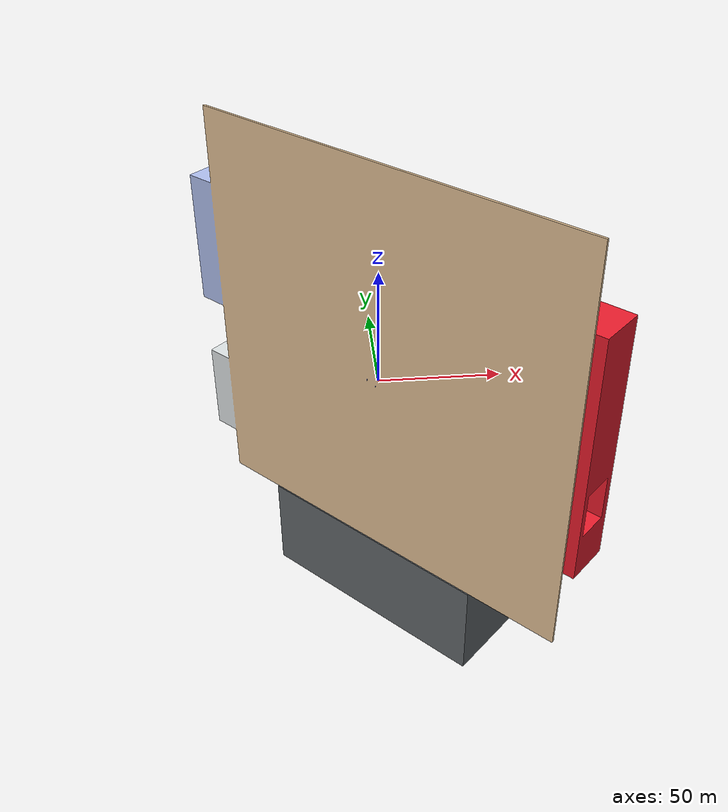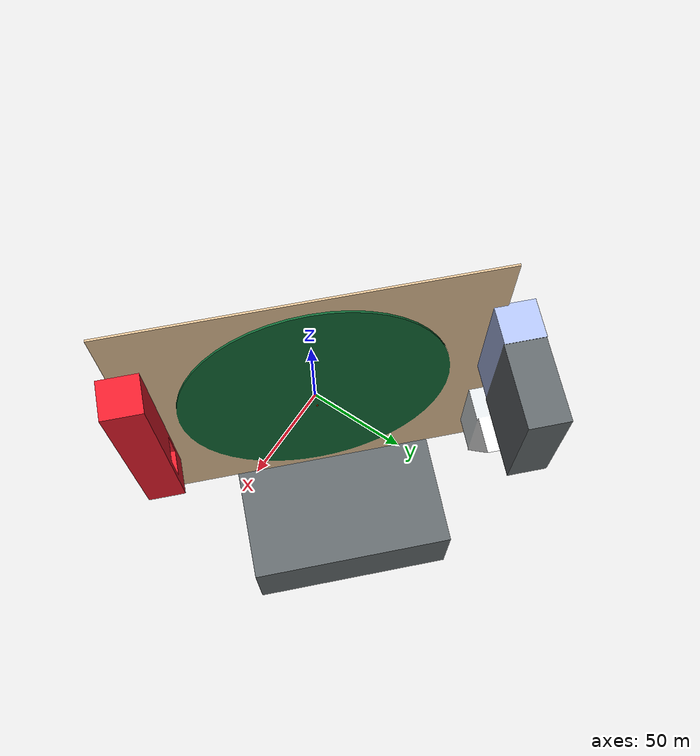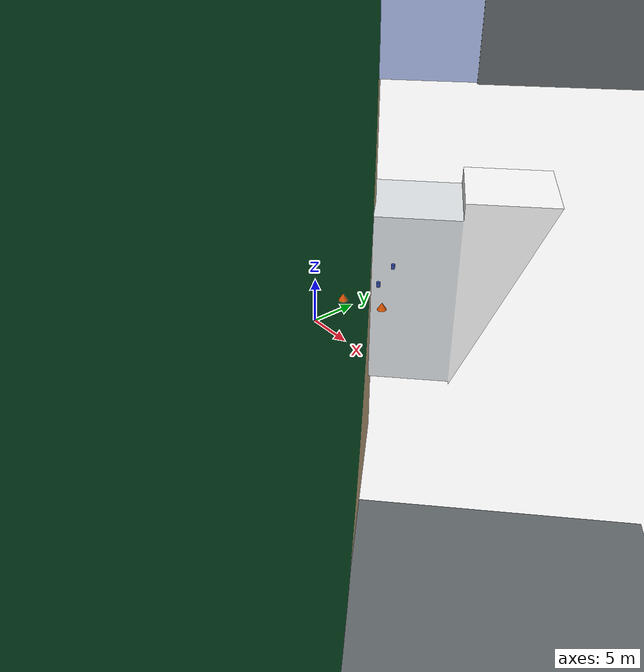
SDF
<?xml version="1.0" ?>
<sdf version="1.8">
    <world name="pioneer_world">
        <physics name="1ms" type="ignored">
            <max_step_size>0.001</max_step_size>
            <real_time_factor>1.0</real_time_factor>
        </physics>
        <plugin
            filename="libgz-sim-physics-system"
            name="gz::sim::systems::Physics">
        </plugin>
        <plugin
            filename="libgz-sim-user-commands-system"
            name="gz::sim::systems::UserCommands">
        </plugin>
        <plugin
            filename="libgz-sim-scene-broadcaster-system"
            name="gz::sim::systems::SceneBroadcaster">
        </plugin>
        <plugin filename="libgz-sim-imu-system"
                name="gz::sim::systems::Imu">
        </plugin>
        <plugin filename="libgz-sim-sensors-system"
                name="gz::sim::systems::Sensors">
        </plugin>
        <plugin filename="libgz-sim-contact-system"
                name="gz::sim::systems::Contact">
        </plugin>
        <!-- Navsat plugin -->
        <plugin
            filename="gz-sim-navsat-system"
            name="gz::sim::systems::NavSat">
        </plugin>

        <spherical_coordinates>
            <surface_model>EARTH_WGS84</surface_model>
            <world_frame_orientation>ENU</world_frame_orientation>
            <latitude_deg>-31.9080057</latitude_deg>
            <longitude_deg>115.817984</longitude_deg>
            <elevation>0</elevation>
            <heading_deg>0</heading_deg>
        </spherical_coordinates>

        <light type="directional" name="sun">
                <cast_shadows>true</cast_shadows>
                <pose>0 0 10 0 0 0</pose>
                <diffuse>0.8 0.8 0.8 1</diffuse>
                <specular>0.2 0.2 0.2 1</specular>
                <attenuation>
                    <range>1000</range>
                    <constant>0.9</constant>
                    <linear>0.01</linear>
                    <quadratic>0.001</quadratic>
                </attenuation>
                <direction>-0.5 0.1 -0.9</direction>
            </light>

            <model name="ground_plane">
                <static>true</static>
                <pose>0 0 0 -1.5708 0 -0.785</pose>
                <link name="link">
                    <collision name="collision">
                        <geometry>
                            <mesh>
                                <uri>/home/jeremy/Resources/install/pioneer/share/pioneer/src/meshes/james_oval.dae</uri>
                            </mesh>
                        </geometry>
                    </collision>
                    <visual name="visual">
                        <geometry>
                            <mesh>
                                <uri>/home/jeremy/Resources/install/pioneer/share/pioneer/src/meshes/james_oval.dae</uri>
                            </mesh>
                        </geometry>
                    </visual>
                </link>
            </model>

            <model name='cone'>
                <static>true</static>
                <pose>2 0 2.3 0 0 0</pose><!--pose relative to the world-->
                <link name='box'>
                    <pose/>
                    <inertial> <!--inertial properties of the link mass, inertia matix-->
                        <mass>1.14395</mass>
                        <inertia>
                            <ixx>9.532917</ixx>
                            <ixy>0</ixy>
                            <ixz>0</ixz>
                            <iyy>0.023832</iyy>
                            <iyz>0</iyz>
                            <izz>9.556749</izz>
                        </inertia>
                    </inertial>
                    <visual name='visual'>
                        <geometry>
                            <cone>
                                <radius>0.5</radius>
                                <length>0.8</length>
                            </cone>
                        </geometry>
                        <!--let's add color to our link-->
                        <material>
                            <ambient>0.8 0.3 0.0 1</ambient>
                            <diffuse>0.8 0.3 0.0 1</diffuse>
                            <specular>0.8 0.3 0.0 1</specular>
                        </material>
                    </visual>
                    <collision name='collision'> <!--todo: describe why we need the collision-->
                        <geometry>
                            <cone>
                                <radius>0.5</radius>
                                <length>0.8</length>
                            </cone>
                        </geometry>
                    </collision>
                    <sensor name='sensor_contact' type='contact'>
                        <contact>
                            <collision>collision</collision>
                        </contact>
                    </sensor>
                </link>
                <plugin filename="libgz-sim-touchplugin-system"
                        name="gz::sim::systems::TouchPlugin">
                    <target>vehicle_blue</target>
                    <namespace>cone</namespace>
                    <time>0.001</time>
                    <enabled>true</enabled>
                </plugin>
            </model>

            <model name='cone2'>
                <static>true</static>
                <pose>1 0 2.3 0 0 0</pose><!--pose relative to the world-->
                <link name='box'>
                    <pose/>
                    <inertial> <!--inertial properties of the link mass, inertia matix-->
                        <mass>1.14395</mass>
                        <inertia>
                            <ixx>9.532917</ixx>
                            <ixy>0</ixy>
                            <ixz>0</ixz>
                            <iyy>0.023832</iyy>
                            <iyz>0</iyz>
                            <izz>9.556749</izz>
                        </inertia>
                    </inertial>
                    <visual name='visual'>
                        <geometry>
                            <cone>
                                <radius>0.5</radius>
                                <length>0.8</length>
                            </cone>
                        </geometry>
                        <!--let's add color to our link-->
                        <material>
                            <ambient>0.8 0.3 0.0 1</ambient>
                            <diffuse>0.8 0.3 0.0 1</diffuse>
                            <specular>0.8 0.3 0.0 1</specular>
                        </material>
                    </visual>
                    <collision name='collision'> <!--todo: describe why we need the collision-->
                        <geometry>
                            <cone>
                                <radius>0.5</radius>
                                <length>0.8</length>
                            </cone>
                        </geometry>
                    </collision>
                    <sensor name='sensor_contact' type='contact'>
                        <contact>
                            <collision>collision</collision>
                        </contact>
                    </sensor>
                </link>
                <plugin filename="libgz-sim-touchplugin-system"
                        name="gz::sim::systems::TouchPlugin">
                    <target>vehicle_blue</target>
                    <namespace>cone</namespace>
                    <time>0.001</time>
                    <enabled>true</enabled>
                </plugin>
            </model>

            <model name='cone3'>
                <static>true</static>
                <pose>-1 2 2.3 0 0 0</pose><!--pose relative to the world-->
                <link name='box'>
                    <pose/>
                    <inertial> <!--inertial properties of the link mass, inertia matix-->
                        <mass>1.14395</mass>
                        <inertia>
                            <ixx>9.532917</ixx>
                            <ixy>0</ixy>
                            <ixz>0</ixz>
                            <iyy>0.023832</iyy>
                            <iyz>0</iyz>
                            <izz>9.556749</izz>
                        </inertia>
                    </inertial>
                    <visual name='visual'>
                        <geometry>
                            <cone>
                                <radius>0.5</radius>
                                <length>0.8</length>
                            </cone>
                        </geometry>
                        <!--let's add color to our link-->
                        <material>
                            <ambient>0.8 0.3 0.0 1</ambient>
                            <diffuse>0.8 0.3 0.0 1</diffuse>
                            <specular>0.8 0.3 0.0 1</specular>
                        </material>
                    </visual>
                    <collision name='collision'> <!--todo: describe why we need the collision-->
                        <geometry>
                            <cone>
                                <radius>0.5</radius>
                                <length>0.8</length>
                            </cone>
                        </geometry>
                    </collision>
                    <sensor name='sensor_contact' type='contact'>
                        <contact>
                            <collision>collision</collision>
                        </contact>
                    </sensor>
                </link>
                <plugin filename="libgz-sim-touchplugin-system"
                        name="gz::sim::systems::TouchPlugin">
                    <target>vehicle_blue</target>
                    <namespace>cone</namespace>
                    <time>0.001</time>
                    <enabled>true</enabled>
                </plugin>
            </model>

            <model name='cone4'>
                <static>true</static>
                <pose>5 5 2.3 0 0 0</pose><!--pose relative to the world-->
                <link name='box'>
                    <pose/>
                    <inertial> <!--inertial properties of the link mass, inertia matix-->
                        <mass>1.14395</mass>
                        <inertia>
                            <ixx>9.532917</ixx>
                            <ixy>0</ixy>
                            <ixz>0</ixz>
                            <iyy>0.023832</iyy>
                            <iyz>0</iyz>
                            <izz>9.556749</izz>
                        </inertia>
                    </inertial>
                    <visual name='visual'>
                        <geometry>
                            <cone>
                                <radius>0.5</radius>
                                <length>0.8</length>
                            </cone>
                        </geometry>
                        <!--let's add color to our link-->
                        <material>
                            <ambient>0.8 0.3 0.0 1</ambient>
                            <diffuse>0.8 0.3 0.0 1</diffuse>
                            <specular>0.8 0.3 0.0 1</specular>
                        </material>
                    </visual>
                    <collision name='collision'> <!--todo: describe why we need the collision-->
                        <geometry>
                            <cone>
                                <radius>0.5</radius>
                                <length>0.8</length>
                            </cone>
                        </geometry>
                    </collision>
                    <sensor name='sensor_contact' type='contact'>
                        <contact>
                            <collision>collision</collision>
                        </contact>
                    </sensor>
                </link>
                <plugin filename="libgz-sim-touchplugin-system"
                        name="gz::sim::systems::TouchPlugin">
                    <target>vehicle_blue</target>
                    <namespace>cone</namespace>
                    <time>0.001</time>
                    <enabled>true</enabled>
                </plugin>
            </model>

            <model name='cone5'>
                <static>true</static>
                <pose>1 3 2.3 0 0 0</pose><!--pose relative to the world-->
                <link name='box'>
                    <pose/>
                    <inertial> <!--inertial properties of the link mass, inertia matix-->
                        <mass>1.14395</mass>
                        <inertia>
                            <ixx>9.532917</ixx>
                            <ixy>0</ixy>
                            <ixz>0</ixz>
                            <iyy>0.023832</iyy>
                            <iyz>0</iyz>
                            <izz>9.556749</izz>
                        </inertia>
                    </inertial>
                    <visual name='visual'>
                        <geometry>
                            <cone>
                                <radius>0.5</radius>
                                <length>0.8</length>
                            </cone>
                        </geometry>
                        <!--let's add color to our link-->
                        <material>
                            <ambient>0.8 0.3 0.0 1</ambient>
                            <diffuse>0.8 0.3 0.0 1</diffuse>
                            <specular>0.8 0.3 0.0 1</specular>
                        </material>
                    </visual>
                    <collision name='collision'> <!--todo: describe why we need the collision-->
                        <geometry>
                            <cone>
                                <radius>0.5</radius>
                                <length>0.8</length>
                            </cone>
                        </geometry>
                    </collision>
                    <sensor name='sensor_contact' type='contact'>
                        <contact>
                            <collision>collision</collision>
                        </contact>
                    </sensor>
                </link>
                <plugin filename="libgz-sim-touchplugin-system"
                        name="gz::sim::systems::TouchPlugin">
                    <target>vehicle_blue</target>
                    <namespace>cone</namespace>
                    <time>0.001</time>
                    <enabled>true</enabled>
                </plugin>
            </model>

            <model name='bucket'>
                <static>true</static>
                <pose>1 8 2 0 0 0</pose><!--pose relative to the world-->
                <link name='box'>
                    <pose/>
                    <inertial> <!--inertial properties of the link mass, inertia matix-->
                        <mass>1.14395</mass>
                        <inertia>
                            <ixx>9.532917</ixx>
                            <ixy>0</ixy>
                            <ixz>0</ixz>
                            <iyy>0.023832</iyy>
                            <iyz>0</iyz>
                            <izz>9.556749</izz>
                        </inertia>
                    </inertial>
                    <visual name='visual'>
                        <geometry>
                            <cylinder>
                                <radius>0.2</radius>
                                <length>0.6</length>
                            </cylinder>
                        </geometry>
                        <!--let's add color to our link-->
                        <material>
                            <ambient>0.2 0.3 0.7 1</ambient>
                            <diffuse>0.2 0.3 0.7 1</diffuse>
                            <specular>0.2 0.3 0.7 1</specular>
                        </material>
                    </visual>
                    <collision name='collision'> <!--todo: describe why we need the collision-->
                        <geometry>
                            <cylinder>
                                <radius>0.2</radius>
                                <length>0.6</length>
                            </cylinder>
                        </geometry>
                    </collision>
                    <sensor name='sensor_contact' type='contact'>
                        <contact>
                            <collision>collision</collision>
                        </contact>
                    </sensor>
                </link>
                <plugin filename="libgz-sim-touchplugin-system"
                        name="gz::sim::systems::TouchPlugin">
                    <target>vehicle_blue</target>
                    <namespace>cylinder</namespace>
                    <time>0.001</time>
                    <enabled>true</enabled>
                </plugin>
            </model>

            <model name='bucket2'>
                <static>true</static>
                <pose>1 -2 2 0 0 0</pose><!--pose relative to the world-->
                <link name='box'>
                    <pose/>
                    <inertial> <!--inertial properties of the link mass, inertia matix-->
                        <mass>1.14395</mass>
                        <inertia>
                            <ixx>9.532917</ixx>
                            <ixy>0</ixy>
                            <ixz>0</ixz>
                            <iyy>0.023832</iyy>
                            <iyz>0</iyz>
                            <izz>9.556749</izz>
                        </inertia>
                    </inertial>
                    <visual name='visual'>
                        <geometry>
                            <cylinder>
                                <radius>0.2</radius>
                                <length>0.6</length>
                            </cylinder>
                        </geometry>
                        <!--let's add color to our link-->
                        <material>
                            <ambient>0.2 0.3 0.7 1</ambient>
                            <diffuse>0.2 0.3 0.7 1</diffuse>
                            <specular>0.2 0.3 0.7 1</specular>
                        </material>
                    </visual>
                    <collision name='collision'> <!--todo: describe why we need the collision-->
                        <geometry>
                            <cylinder>
                                <radius>0.2</radius>
                                <length>0.6</length>
                            </cylinder>
                        </geometry>
                    </collision>
                    <sensor name='sensor_contact' type='contact'>
                        <contact>
                            <collision>collision</collision>
                        </contact>
                    </sensor>
                </link>
                <plugin filename="libgz-sim-touchplugin-system"
                        name="gz::sim::systems::TouchPlugin">
                    <target>vehicle_blue</target>
                    <namespace>cylinder</namespace>
                    <time>0.001</time>
                    <enabled>true</enabled>
                </plugin>
            </model>

            <model name='bucket3'>
                <static>true</static>
                <pose>-2 -7 2 0 0 0</pose><!--pose relative to the world-->
                <link name='box'>
                    <pose/>
                    <inertial> <!--inertial properties of the link mass, inertia matix-->
                        <mass>1.14395</mass>
                        <inertia>
                            <ixx>9.532917</ixx>
                            <ixy>0</ixy>
                            <ixz>0</ixz>
                            <iyy>0.023832</iyy>
                            <iyz>0</iyz>
                            <izz>9.556749</izz>
                        </inertia>
                    </inertial>
                    <visual name='visual'>
                        <geometry>
                            <cylinder>
                                <radius>0.2</radius>
                                <length>0.6</length>
                            </cylinder>
                        </geometry>
                        <!--let's add color to our link-->
                        <material>
                            <ambient>0.2 0.3 0.7 1</ambient>
                            <diffuse>0.2 0.3 0.7 1</diffuse>
                            <specular>0.2 0.3 0.7 1</specular>
                        </material>
                    </visual>
                    <collision name='collision'> <!--todo: describe why we need the collision-->
                        <geometry>
                            <cylinder>
                                <radius>0.2</radius>
                                <length>0.6</length>
                            </cylinder>
                        </geometry>
                    </collision>
                    <sensor name='sensor_contact' type='contact'>
                        <contact>
                            <collision>collision</collision>
                        </contact>
                    </sensor>
                </link>
                <plugin filename="libgz-sim-touchplugin-system"
                        name="gz::sim::systems::TouchPlugin">
                    <target>vehicle_blue</target>
                    <namespace>cylinder</namespace>
                    <time>0.001</time>
                    <enabled>true</enabled>
                </plugin>
            </model>

            <model name='bucket4'>
                <static>true</static>
                <pose>-5 -2 2 0 0 0</pose><!--pose relative to the world-->
                <link name='box'>
                    <pose/>
                    <inertial> <!--inertial properties of the link mass, inertia matix-->
                        <mass>1.14395</mass>
                        <inertia>
                            <ixx>9.532917</ixx>
                            <ixy>0</ixy>
                            <ixz>0</ixz>
                            <iyy>0.023832</iyy>
                            <iyz>0</iyz>
                            <izz>9.556749</izz>
                        </inertia>
                    </inertial>
                    <visual name='visual'>
                        <geometry>
                            <cylinder>
                                <radius>0.2</radius>
                                <length>0.6</length>
                            </cylinder>
                        </geometry>
                        <!--let's add color to our link-->
                        <material>
                            <ambient>0.2 0.3 0.7 1</ambient>
                            <diffuse>0.2 0.3 0.7 1</diffuse>
                            <specular>0.2 0.3 0.7 1</specular>
                        </material>
                    </visual>
                    <collision name='collision'> <!--todo: describe why we need the collision-->
                        <geometry>
                            <cylinder>
                                <radius>0.2</radius>
                                <length>0.6</length>
                            </cylinder>
                        </geometry>
                    </collision>
                    <sensor name='sensor_contact' type='contact'>
                        <contact>
                            <collision>collision</collision>
                        </contact>
                    </sensor>
                </link>
                <plugin filename="libgz-sim-touchplugin-system"
                        name="gz::sim::systems::TouchPlugin">
                    <target>vehicle_blue</target>
                    <namespace>cylinder</namespace>
                    <time>0.001</time>
                    <enabled>true</enabled>
                </plugin>
            </model>

            <model name='bucket5'>
                <static>true</static>
                <pose>-1 12 2 0 0 0</pose><!--pose relative to the world-->
                <link name='box'>
                    <pose/>
                    <inertial> <!--inertial properties of the link mass, inertia matix-->
                        <mass>1.14395</mass>
                        <inertia>
                            <ixx>9.532917</ixx>
                            <ixy>0</ixy>
                            <ixz>0</ixz>
                            <iyy>0.023832</iyy>
                            <iyz>0</iyz>
                            <izz>9.556749</izz>
                        </inertia>
                    </inertial>
                    <visual name='visual'>
                        <geometry>
                            <cylinder>
                                <radius>0.2</radius>
                                <length>0.6</length>
                            </cylinder>
                        </geometry>
                        <!--let's add color to our link-->
                        <material>
                            <ambient>0.2 0.3 0.7 1</ambient>
                            <diffuse>0.2 0.3 0.7 1</diffuse>
                            <specular>0.2 0.3 0.7 1</specular>
                        </material>
                    </visual>
                    <collision name='collision'> <!--todo: describe why we need the collision-->
                        <geometry>
                            <cylinder>
                                <radius>0.2</radius>
                                <length>0.6</length>
                            </cylinder>
                        </geometry>
                    </collision>
                    <sensor name='sensor_contact' type='contact'>
                        <contact>
                            <collision>collision</collision>
                        </contact>
                    </sensor>
                </link>
                <plugin filename="libgz-sim-touchplugin-system"
                        name="gz::sim::systems::TouchPlugin">
                    <target>vehicle_blue</target>
                    <namespace>cylinder</namespace>
                    <time>0.001</time>
                    <enabled>true</enabled>
                </plugin>
            </model>
    </world>
</sdf>
